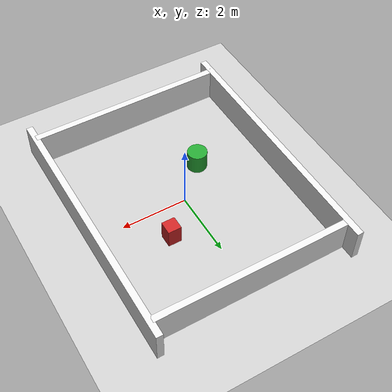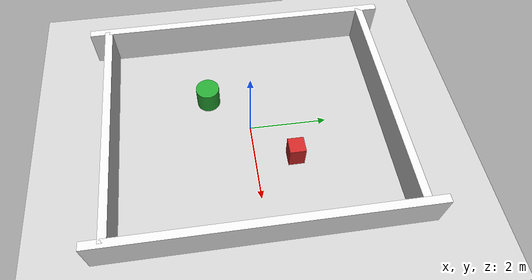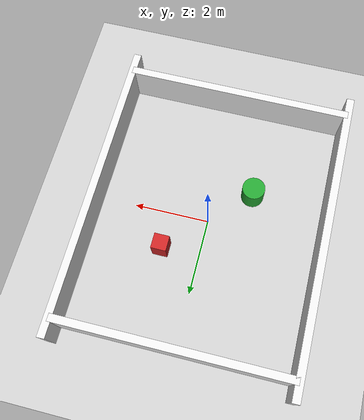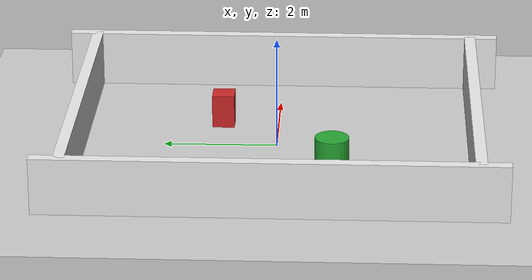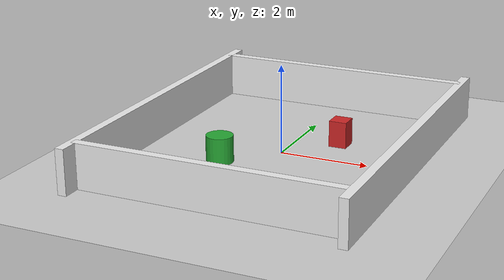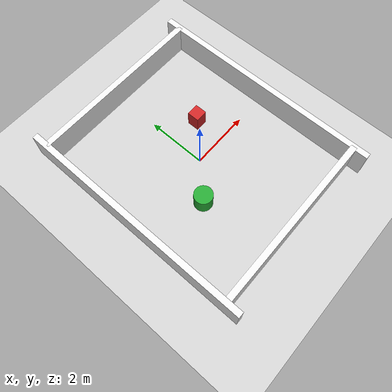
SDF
<?xml version="1.0" ?>
<sdf version="1.6">
  <world name="default">

    <!-- 全局光照 -->
    <include>
      <uri>model://sun</uri>
    </include>

    <!-- 地面 -->
    <model name="ground_plane">
      <static>true</static>
      <link name="link">
        <collision name="collision">
          <geometry>
            <plane>
              <normal>0 0 1</normal>
              <size>20 20</size>
            </plane>
          </geometry>
        </collision>
        <visual name="visual">
          <geometry>
            <plane>
              <normal>0 0 1</normal>
              <size>20 20</size>
            </plane>
          </geometry>
          <material>
            <script>
              <uri>file://media/materials/scripts/gazebo.material</uri>
              <name>Gazebo/Grey</name>
            </script>
          </material>
        </visual>
      </link>
    </model>

    <!-- 墙壁1 -->
    <model name="wall_1">
      <static>true</static>
      <pose>3 0 0.5 0 0 0</pose>
      <link name="link">
        <collision name="collision">
          <geometry>
            <box>
              <size>0.2 8 1</size>
            </box>
          </geometry>
        </collision>
        <visual name="visual">
          <geometry>
            <box>
              <size>0.2 8 1</size>
            </box>
          </geometry>
          <material>
            <script>
              <uri>file://media/materials/scripts/gazebo.material</uri>
              <name>Gazebo/White</name>
            </script>
          </material>
        </visual>
      </link>
    </model>

    <!-- 墙壁2 -->
    <model name="wall_2">
      <static>true</static>
      <pose>-3 0 0.5 0 0 0</pose>
      <link name="link">
        <collision name="collision">
          <geometry>
            <box>
              <size>0.2 8 1</size>
            </box>
          </geometry>
        </collision>
        <visual name="visual">
          <geometry>
            <box>
              <size>0.2 8 1</size>
            </box>
          </geometry>
          <material>
            <script>
              <uri>file://media/materials/scripts/gazebo.material</uri>
              <name>Gazebo/White</name>
            </script>
          </material>
        </visual>
      </link>
    </model>

    <!-- 墙壁3 -->
    <model name="wall_3">
      <static>true</static>
      <pose>0 3.5 0.5 0 0 1.5708</pose>
      <link name="link">
        <collision name="collision">
          <geometry>
            <box>
              <size>0.2 6 1</size>
            </box>
          </geometry>
        </collision>
        <visual name="visual">
          <geometry>
            <box>
              <size>0.2 6 1</size>
            </box>
          </geometry>
          <material>
            <script>
              <uri>file://media/materials/scripts/gazebo.material</uri>
              <name>Gazebo/White</name>
            </script>
          </material>
        </visual>
      </link>
    </model>

    <!-- 墙壁4 -->
    <model name="wall_4">
      <static>true</static>
      <pose>0 -3.5 0.5 0 0 1.5708</pose>
      <link name="link">
        <collision name="collision">
          <geometry>
            <box>
              <size>0.2 6 1</size>
            </box>
          </geometry>
        </collision>
        <visual name="visual">
          <geometry>
            <box>
              <size>0.2 6 1</size>
            </box>
          </geometry>
          <material>
            <script>
              <uri>file://media/materials/scripts/gazebo.material</uri>
              <name>Gazebo/White</name>
            </script>
          </material>
        </visual>
      </link>
    </model>

    <!-- 障碍物1 -->
    <model name="obstacle_1">
      <static>true</static>
      <pose>1 1 0.3 0 0 0</pose>
      <link name="link">
        <collision name="collision">
          <geometry>
            <box>
              <size>0.4 0.4 0.6</size>
            </box>
          </geometry>
        </collision>
        <visual name="visual">
          <geometry>
            <box>
              <size>0.4 0.4 0.6</size>
            </box>
          </geometry>
          <material>
            <script>
              <uri>file://media/materials/scripts/gazebo.material</uri>
              <name>Gazebo/Red</name>
            </script>
          </material>
        </visual>
      </link>
    </model>

    <!-- 障碍物2 -->
    <model name="obstacle_2">
      <static>true</static>
      <pose>-1 -1 0.3 0 0 0</pose>
      <link name="link">
        <collision name="collision">
          <geometry>
            <cylinder>
              <radius>0.3</radius>
              <length>0.6</length>
            </cylinder>
          </geometry>
        </collision>
        <visual name="visual">
          <geometry>
            <cylinder>
              <radius>0.3</radius>
              <length>0.6</length>
            </cylinder>
          </geometry>
          <material>
            <script>
              <uri>file://media/materials/scripts/gazebo.material</uri>
              <name>Gazebo/Green</name>
            </script>
          </material>
        </visual>
      </link>
    </model>

    <!-- 物理引擎设置 -->
    <physics type="ode">
      <gravity>0 0 -9.8066</gravity>
      <ode>
        <solver>
          <type>quick</type>
          <iters>10</iters>
          <sor>1.3</sor>
          <use_dynamic_moi_rescaling>0</use_dynamic_moi_rescaling>
        </solver>
        <constraints>
          <cfm>0.00001</cfm>
          <erp>0.2</erp>
          <contact_max_correcting_vel>100.0</contact_max_correcting_vel>
          <contact_surface_layer>0.001</contact_surface_layer>
        </constraints>
      </ode>
      <max_step_size>0.004</max_step_size>
      <real_time_factor>1.0</real_time_factor>
      <real_time_update_rate>250</real_time_update_rate>
    </physics>

    <scene>
      <ambient>0.4 0.4 0.4 1</ambient>
      <background>0.7 0.7 0.7 1</background>
      <shadows>true</shadows>
    </scene>

  </world>
</sdf>
